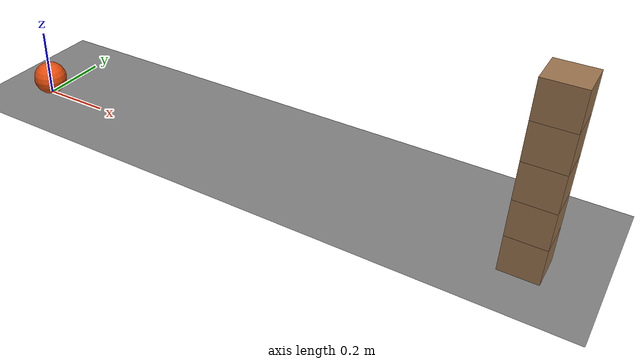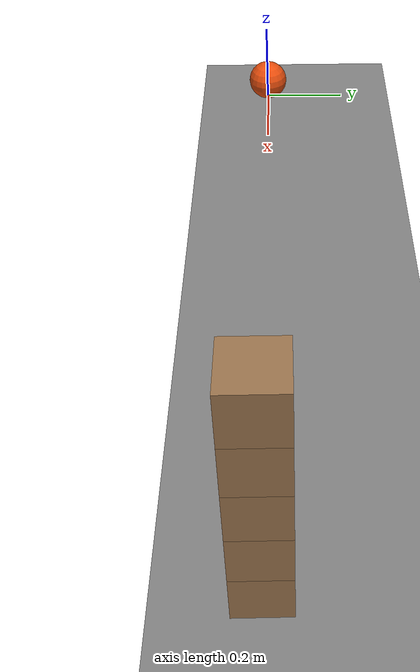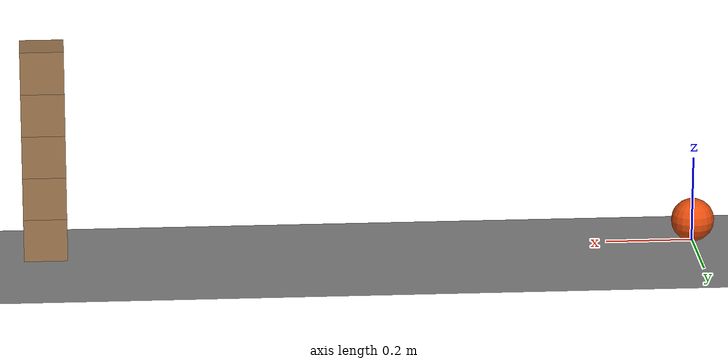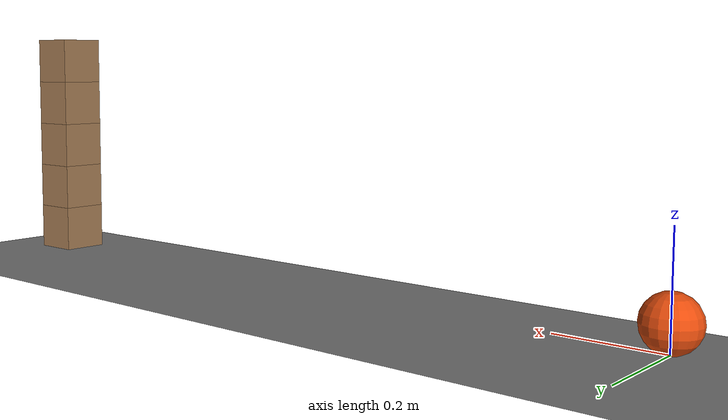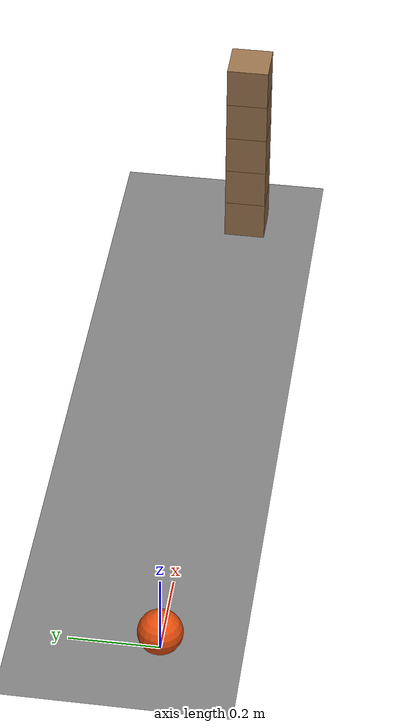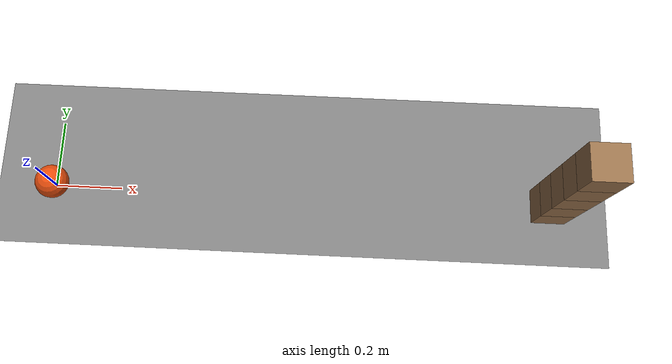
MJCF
<mujoco model="stack_of_five_toppled_from_the_bottom">
  <compiler angle="radian"/>
  <option timestep="0.002"/>
  <worldbody>
    <geom name="floor" type="plane" size="6 6 0.1" friction="0.8 0.005 0.002"/>
    <body name="block1" pos="1.5 0 0.05">
      <freejoint/>
      <geom name="block1" type="box" pos="0 0 0" size="0.05 0.05 0.05" mass="0.3" friction="0.6 0.005 0.0001" rgba="0.6 0.45 0.3 1"/>
    </body>
    <body name="block2" pos="1.5 0 0.15">
      <freejoint/>
      <geom name="block2" type="box" pos="0 0 0" size="0.05 0.05 0.05" mass="0.3" friction="0.6 0.005 0.0001" rgba="0.6 0.45 0.3 1"/>
    </body>
    <body name="block3" pos="1.5 0 0.25">
      <freejoint/>
      <geom name="block3" type="box" pos="0 0 0" size="0.05 0.05 0.05" mass="0.3" friction="0.6 0.005 0.0001" rgba="0.6 0.45 0.3 1"/>
    </body>
    <body name="block4" pos="1.5 0 0.35">
      <freejoint/>
      <geom name="block4" type="box" pos="0 0 0" size="0.05 0.05 0.05" mass="0.3" friction="0.6 0.005 0.0001" rgba="0.6 0.45 0.3 1"/>
    </body>
    <body name="block5" pos="1.5 0 0.45">
      <freejoint/>
      <geom name="block5" type="box" pos="0 0 0" size="0.05 0.05 0.05" mass="0.3" friction="0.6 0.005 0.0001" rgba="0.6 0.45 0.3 1"/>
    </body>
    <body name="ball" pos="0 0 0.05">
      <freejoint/>
      <geom name="ball" type="sphere" pos="0 0 0" size="0.05" mass="1" condim="6" friction="0.8 0.01 0.004" rgba="0.9 0.3 0.05 1"/>
    </body>
  </worldbody>
  <keyframe>
    <key name="start" qpos="1.5 0 0.05 1 0 0 0 1.5 0 0.15 1 0 0 0 1.5 0 0.25 1 0 0 0 1.5 0 0.35 1 0 0 0 1.5 0 0.45 1 0 0 0 0 0 0.05 1 0 0 0" qvel="0 0 0 0 0 0 0 0 0 0 0 0 0 0 0 0 0 0 0 0 0 0 0 0 0 0 0 0 0 0 4 0 0 0 0 0"/>
  </keyframe>
</mujoco>
